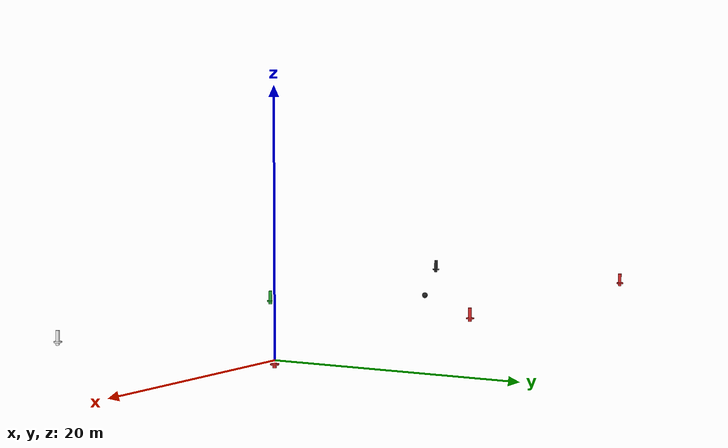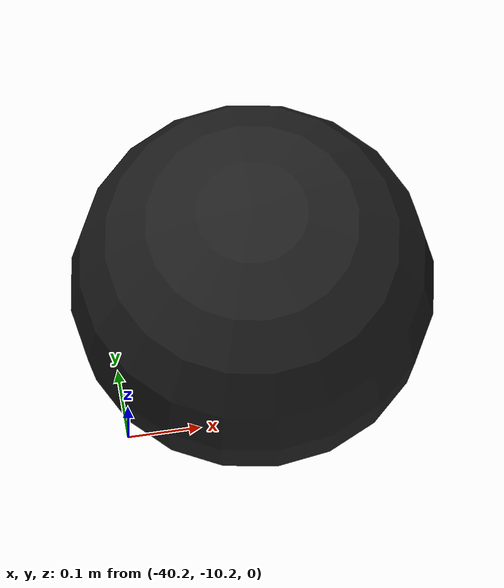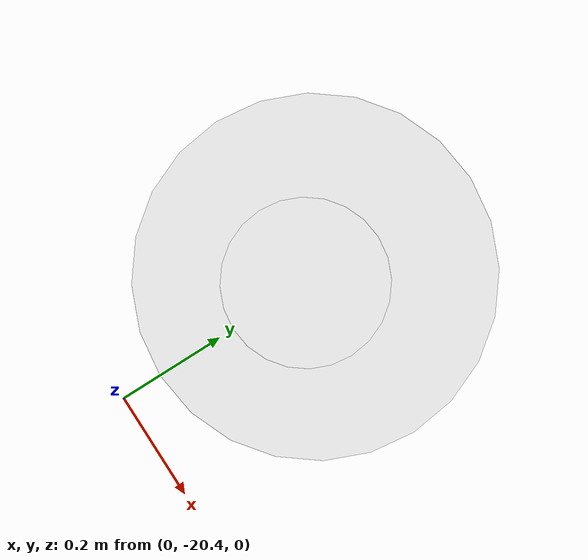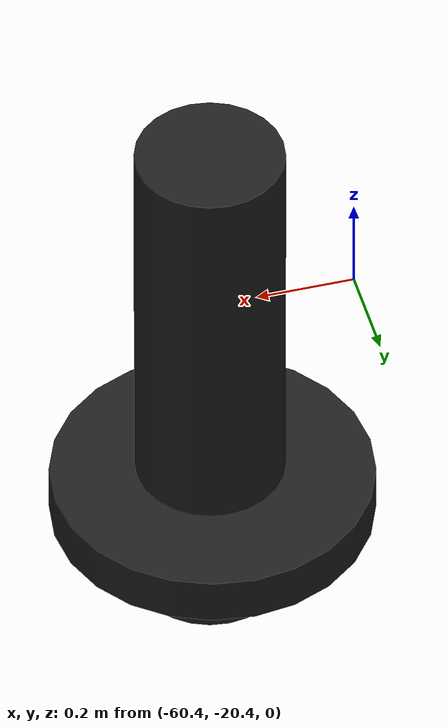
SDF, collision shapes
<?xml version="1.0"?>
<!-- Model for the short navigation course -->
<sdf version="1.6">
  <model name="short_navigation_course_3">

    <!-- Starboard_border -->
    <include>
      <name>red_bound_0</name>
      <pose>0 0 0 0 0 0</pose>
      <uri>https://fuel.gazebosim.org/1.0/openrobotics/models/mb_marker_buoy_red</uri>

      <plugin name="vrx::PolyhedraBuoyancyDrag"
              filename="libPolyhedraBuoyancyDrag.so">
        <fluid_density>1000</fluid_density>
        <fluid_level>0.0</fluid_level>
        <linear_drag>25.0</linear_drag>
        <angular_drag>2.0</angular_drag>
        <buoyancy name="collision_outer">
          <link_name>link</link_name>
          <pose>0 0 -0.3 0 0 0</pose>
          <geometry>
            <cylinder>
              <radius>0.325</radius>
              <length>0.1</length>
            </cylinder>
          </geometry>
        </buoyancy>
        <wavefield>
          <topic>/vrx/wavefield/parameters</topic>
        </wavefield>
      </plugin>

    </include>

    <include>
      <name>red_bound_1</name>
      <pose>-30 0 0 0 0 0</pose>
      <uri>https://fuel.gazebosim.org/1.0/openrobotics/models/mb_marker_buoy_red</uri>

      <plugin name="vrx::PolyhedraBuoyancyDrag"
              filename="libPolyhedraBuoyancyDrag.so">
        <fluid_density>1000</fluid_density>
        <fluid_level>0.0</fluid_level>
        <linear_drag>25.0</linear_drag>
        <angular_drag>2.0</angular_drag>
        <buoyancy name="collision_outer">
          <link_name>link</link_name>
          <pose>0 0 -0.3 0 0 0</pose>
          <geometry>
            <cylinder>
              <radius>0.325</radius>
              <length>0.1</length>
            </cylinder>
          </geometry>
        </buoyancy>
        <wavefield>
          <topic>/vrx/wavefield/parameters</topic>
        </wavefield>
      </plugin>

    </include>

    <include>
      <name>red_bound_2</name>
      <pose>-60 0 0 0 0 0</pose>
      <uri>https://fuel.gazebosim.org/1.0/openrobotics/models/mb_marker_buoy_red</uri>

      <plugin name="vrx::PolyhedraBuoyancyDrag"
              filename="libPolyhedraBuoyancyDrag.so">
        <fluid_density>1000</fluid_density>
        <fluid_level>0.0</fluid_level>
        <linear_drag>25.0</linear_drag>
        <angular_drag>2.0</angular_drag>
        <buoyancy name="collision_outer">
          <link_name>link</link_name>
          <pose>0 0 -0.3 0 0 0</pose>
          <geometry>
            <cylinder>
              <radius>0.325</radius>
              <length>0.1</length>
            </cylinder>
          </geometry>
        </buoyancy>
        <wavefield>
          <topic>/vrx/wavefield/parameters</topic>
        </wavefield>
      </plugin>

    </include>

    <!-- Port_border -->
    <include>
      <name>green_bound_0</name>
      <pose>0 -20 0.2 0 0 0</pose>
      <uri>https://fuel.gazebosim.org/1.0/openrobotics/models/mb_marker_buoy_white</uri>

      <plugin name="vrx::PolyhedraBuoyancyDrag"
              filename="libPolyhedraBuoyancyDrag.so">
        <fluid_density>1000</fluid_density>
        <fluid_level>0.0</fluid_level>
        <linear_drag>25.0</linear_drag>
        <angular_drag>2.0</angular_drag>
        <buoyancy name="collision_outer">
          <link_name>link</link_name>
          <pose>0 0 -0.3 0 0 0</pose>
          <geometry>
            <cylinder>
              <radius>0.325</radius>
              <length>0.1</length>
            </cylinder>
          </geometry>
        </buoyancy>
        <wavefield>
          <topic>/vrx/wavefield/parameters</topic>
        </wavefield>
      </plugin>

    </include>

    <include>
      <name>green_bound_1</name>
      <pose>-30 -20 0.2 0 0 0</pose>
      <uri>https://fuel.gazebosim.org/1.0/openrobotics/models/mb_marker_buoy_green</uri>

      <plugin name="vrx::PolyhedraBuoyancyDrag"
              filename="libPolyhedraBuoyancyDrag.so">
        <fluid_density>1000</fluid_density>
        <fluid_level>0.0</fluid_level>
        <linear_drag>25.0</linear_drag>
        <angular_drag>2.0</angular_drag>
        <buoyancy name="collision_outer">
          <link_name>link</link_name>
          <pose>0 0 -0.3 0 0 0</pose>
          <geometry>
            <cylinder>
              <radius>0.325</radius>
              <length>0.1</length>
            </cylinder>
          </geometry>
        </buoyancy>
        <wavefield>
          <topic>/vrx/wavefield/parameters</topic>
        </wavefield>
      </plugin>

    </include>

    <include>
      <name>green_bound_2</name>
      <pose>-60 -20 0.2 0 0 0</pose>
      <uri>https://fuel.gazebosim.org/1.0/openrobotics/models/mb_marker_buoy_black</uri>
      <plugin name="vrx::PolyhedraBuoyancyDrag"
              filename="libPolyhedraBuoyancyDrag.so">
        <fluid_density>1000</fluid_density>
        <fluid_level>0.0</fluid_level>
        <linear_drag>25.0</linear_drag>
        <angular_drag>2.0</angular_drag>
        <buoyancy name="collision_outer">
          <link_name>link</link_name>
          <pose>0 0 -0.3 0 0 0</pose>
          <geometry>
            <cylinder>
              <radius>0.325</radius>
              <length>0.1</length>
            </cylinder>
          </geometry>
        </buoyancy>
        <wavefield>
          <topic>/vrx/wavefield/parameters</topic>
        </wavefield>
      </plugin>

    </include>

    <!-- Obstacles -->
    <include>
      <name>obstacle_0</name>
      <pose>-40 -10 0.0 0 0 0 </pose>
      <uri>https://fuel.gazebosim.org/1.0/openrobotics/models/mb_round_buoy_black</uri>
      <plugin name="vrx::PolyhedraBuoyancyDrag"
              filename="libPolyhedraBuoyancyDrag.so">
        <fluid_density>1000</fluid_density>
        <fluid_level>0.0</fluid_level>
        <linear_drag>25.0</linear_drag>
        <angular_drag>2.0</angular_drag>
        <buoyancy name="collision_outer">
          <link_name>link</link_name>
          <pose>0 0 0 0 0 0</pose>
          <geometry>
            <sphere>
              <radius>0.25</radius>
          </sphere>
          </geometry>
        </buoyancy>
        <wavefield>
          <topic>/vrx/wavefield/parameters</topic>
        </wavefield>
      </plugin>
    </include>

  </model>

</sdf>

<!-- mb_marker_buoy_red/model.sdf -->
<sdf version="1.6">
  <model name="mb_marker_buoy_red">
    <link name="link">
      <inertial>
        <pose>0 0 -2 0 0 0</pose>
        <!-- Mass determined based on buoyancy geometry so object
             floats at mid-point of sphere -->
        <mass>20</mass>
        <!-- Mark only - based on cylinder -->
        <inertia>
          <ixx>1.0</ixx>
          <ixy>0</ixy>
          <ixz>0</ixz>
          <iyy>1.0</iyy>
          <iyz>0</iyz>
          <izz>0.1</izz>
        </inertia>
      </inertial>
      <collision name="collision_inner">
        <pose>0 -0.02 0.02 0 0 0</pose>
        <geometry>
          <cylinder>
            <radius>0.15</radius>
            <length>1.15</length>
          </cylinder>
        </geometry>
      </collision>
      <collision name="collision_outer">
        <pose>0 0 -0.3 0 0 0</pose>
        <geometry>
          <cylinder>
            <radius>0.325</radius>
            <length>0.1</length>
          </cylinder>
        </geometry>
      </collision>
      <visual name="visual">
        <pose>0 0 0 1.57079 0 0</pose>
        <geometry>
	        <mesh><uri>model://mb_marker_buoy_red/meshes/mb_marker_buoy.dae</uri></mesh>
        </geometry>
        <material>
          <script>
            <uri>model://mb_marker_buoy_red/materials/scripts/mb_marker_buoy.material</uri>
            <name>mb_marker_buoy/Red</name>
          </script>
        </material>
      </visual>
    </link>
    <plugin name="BuoyancyPlugin" filename="libbuoyancy_gazebo_plugin.so">
      <wave_model>ocean_waves</wave_model>
      <fluid_density>1000</fluid_density>
      <fluid_level>0.0</fluid_level>
      <linear_drag>25.0</linear_drag>
      <angular_drag>2.0</angular_drag>
      <buoyancy name="buoyancy_sphere">
        <link_name>link</link_name>
        <pose>0 0 -0.12 0 0 0</pose>
        <geometry>
          <sphere>
            <radius>0.325</radius>
          </sphere>
        </geometry>
      </buoyancy>
    </plugin>
  </model>
</sdf>

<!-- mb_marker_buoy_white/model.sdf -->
<sdf version="1.6">
  <model name="mb_marker_buoy_white">
    <link name="link">
      <inertial>
        <pose>0 0 -2 0 0 0</pose>
        <!-- Mass determined based on buoyancy geometry so object
             floats at mid-point of sphere -->
        <mass>20</mass>
        <!-- Mark only - based on cylinder -->
        <inertia>
          <ixx>1.0</ixx>
          <ixy>0</ixy>
          <ixz>0</ixz>
          <iyy>1.0</iyy>
          <iyz>0</iyz>
          <izz>0.1</izz>
        </inertia>
      </inertial>
      <collision name="collision_inner">
        <pose>0 -0.02 0.02 0 0 0</pose>
        <geometry>
          <cylinder>
            <radius>0.15</radius>
            <length>1.15</length>
          </cylinder>
        </geometry>
      </collision>
      <collision name="collision_outer">
        <pose>0 0 -0.3 0 0 0</pose>
        <geometry>
          <cylinder>
            <radius>0.325</radius>
            <length>0.1</length>
          </cylinder>
        </geometry>
      </collision>
      <visual name="visual">
        <pose>0 0 0 1.57079 0 0</pose>
        <geometry>
	        <mesh><uri>model://mb_marker_buoy_red/meshes/mb_marker_buoy.dae</uri></mesh>
        </geometry>
        <material>
          <script>
            <uri>file://media/materials/scripts/gazebo.material</uri>
            <name>Gazebo/White</name>
          </script>
        </material>
      </visual>
    </link>
    <plugin name="BuoyancyPlugin" filename="libbuoyancy_gazebo_plugin.so">
      <wave_model>ocean_waves</wave_model>
      <fluid_density>1000</fluid_density>
      <fluid_level>0.0</fluid_level>
      <linear_drag>25.0</linear_drag>
      <angular_drag>2.0</angular_drag>
      <buoyancy name="buoyancy_sphere">
        <link_name>link</link_name>
        <pose>0 0 -0.12 0 0 0</pose>
        <geometry>
          <sphere>
            <radius>0.325</radius>
          </sphere>
        </geometry>
      </buoyancy>
    </plugin>
  </model>
</sdf>

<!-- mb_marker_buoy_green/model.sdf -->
<sdf version="1.6">
  <model name="mb_marker_buoy_green">
    <link name="link">
      <inertial>
        <pose>0 0 -2 0 0 0</pose>
        <!-- Mass determined based on buoyancy geometry so object
             floats at mid-point of sphere -->
        <mass>20</mass>
        <!-- Mark only - based on cylinder -->
        <inertia>
          <ixx>1.0</ixx>
          <ixy>0</ixy>
          <ixz>0</ixz>
          <iyy>1.0</iyy>
          <iyz>0</iyz>
          <izz>0.1</izz>
        </inertia>
      </inertial>
      <collision name="collision_inner">
        <pose>0 -0.02 0.02 0 0 0</pose>
        <geometry>
          <cylinder>
            <radius>0.15</radius>
            <length>1.15</length>
          </cylinder>
        </geometry>
      </collision>
      <collision name="collision_outer">
        <pose>0 0 -0.3 0 0 0</pose>
        <geometry>
          <cylinder>
            <radius>0.325</radius>
            <length>0.1</length>
          </cylinder>
        </geometry>
      </collision>
      <visual name="visual">
        <pose>0 0 0 1.57079 0 0</pose>
        <geometry>
	        <mesh><uri>model://mb_marker_buoy_red/meshes/mb_marker_buoy.dae</uri></mesh>
        </geometry>
        <material>
          <script>
            <uri>model://mb_marker_buoy_green/materials/scripts/mb_marker_buoy.material</uri>
            <name>mb_marker_buoy/Green</name>
          </script>
        </material>
      </visual>
    </link>
    <plugin name="BuoyancyPlugin" filename="libbuoyancy_gazebo_plugin.so">
      <wave_model>ocean_waves</wave_model>
      <fluid_density>1000</fluid_density>
      <fluid_level>0.0</fluid_level>
      <linear_drag>25.0</linear_drag>
      <angular_drag>2.0</angular_drag>
      <buoyancy name="buoyancy_sphere">
        <link_name>link</link_name>
        <pose>0 0 -0.12 0 0 0</pose>
        <geometry>
          <sphere>
            <radius>0.325</radius>
          </sphere>
        </geometry>
      </buoyancy>
    </plugin>
  </model>
</sdf>

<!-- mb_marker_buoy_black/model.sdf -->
<sdf version="1.6">
  <model name="mb_marker_buoy_black">
    <link name="link">
      <inertial>
        <pose>0 0 -2 0 0 0</pose>
        <!-- Mass determined based on buoyancy geometry so object
             floats at mid-point of sphere -->
        <mass>20</mass>
        <!-- Mark only - based on cylinder -->
        <inertia>
          <ixx>1.0</ixx>
          <ixy>0</ixy>
          <ixz>0</ixz>
          <iyy>1.0</iyy>
          <iyz>0</iyz>
          <izz>0.1</izz>
        </inertia>
      </inertial>
      <collision name="collision_inner">
        <pose>0 -0.02 0.02 0 0 0</pose>
        <geometry>
          <cylinder>
            <radius>0.15</radius>
            <length>1.15</length>
          </cylinder>
        </geometry>
      </collision>
      <collision name="collision_outer">
        <pose>0 0 -0.3 0 0 0</pose>
        <geometry>
          <cylinder>
            <radius>0.325</radius>
            <length>0.1</length>
          </cylinder>
        </geometry>
      </collision>
      <visual name="visual">
        <pose>0 0 0 1.57079 0 0</pose>
        <geometry>
	        <mesh><uri>model://mb_marker_buoy_red/meshes/mb_marker_buoy.dae</uri></mesh>
        </geometry>
        <material>
          <script>
            <uri>file://media/materials/scripts/gazebo.material</uri>
            <name>Gazebo/Black</name>
          </script>
        </material>
      </visual>
    </link>
    <plugin name="BuoyancyPlugin" filename="libbuoyancy_gazebo_plugin.so">
      <wave_model>ocean_waves</wave_model>
      <fluid_density>1000</fluid_density>
      <fluid_level>0.0</fluid_level>
      <linear_drag>25.0</linear_drag>
      <angular_drag>2.0</angular_drag>
      <buoyancy name="buoyancy_sphere">
        <link_name>link</link_name>
        <pose>0 0 -0.12 0 0 0</pose>
        <geometry>
          <sphere>
            <radius>0.325</radius>
          </sphere>
        </geometry>
      </buoyancy>
    </plugin>
  </model>
</sdf>

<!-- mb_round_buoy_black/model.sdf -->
<sdf version="1.6">
  <model name="mb_round_buoy_black">
    <link name="link">
      <inertial>
        <pose>0 0 -2 0 0 0</pose>
        <!-- Mass determined based on buoyancy geometry so object
             floats at mid-point of sphere -->
        <mass>3.5</mass>
        <!-- Mark only - based on cylinder -->
        <inertia>
          <ixx>1.0</ixx>
          <ixy>0</ixy>
          <ixz>0</ixz>
          <iyy>1.0</iyy>
          <iyz>0</iyz>
          <izz>0.1</izz>
        </inertia>
      </inertial>
      <collision name="collision">
        <geometry>
          <sphere>
            <radius>0.25</radius>
          </sphere>
        </geometry>
      </collision>
      <visual name="visual">
        <geometry>
	        <mesh><uri>model://mb_round_buoy_orange/meshes/mb_round_buoy.dae</uri></mesh>
        </geometry>
        <material>
          <script>
            <uri>file://media/materials/scripts/gazebo.material</uri>
            <name>Gazebo/Black</name>
          </script>
        </material>
      </visual>
    </link>
    <plugin name="BuoyancyPlugin" filename="libbuoyancy_gazebo_plugin.so">
      <wave_model>ocean_waves</wave_model>
      <fluid_density>1000</fluid_density>
      <fluid_level>0.0</fluid_level>
      <linear_drag>25.0</linear_drag>
      <angular_drag>2.0</angular_drag>
      <buoyancy name="buoyancy_sphere">
        <link_name>link</link_name>
        <pose>0 0 0.02 0 0 0</pose>
        <geometry>
          <sphere>
            <radius>0.235</radius>
          </sphere>
        </geometry>
      </buoyancy>
    </plugin>
  </model>
</sdf>
